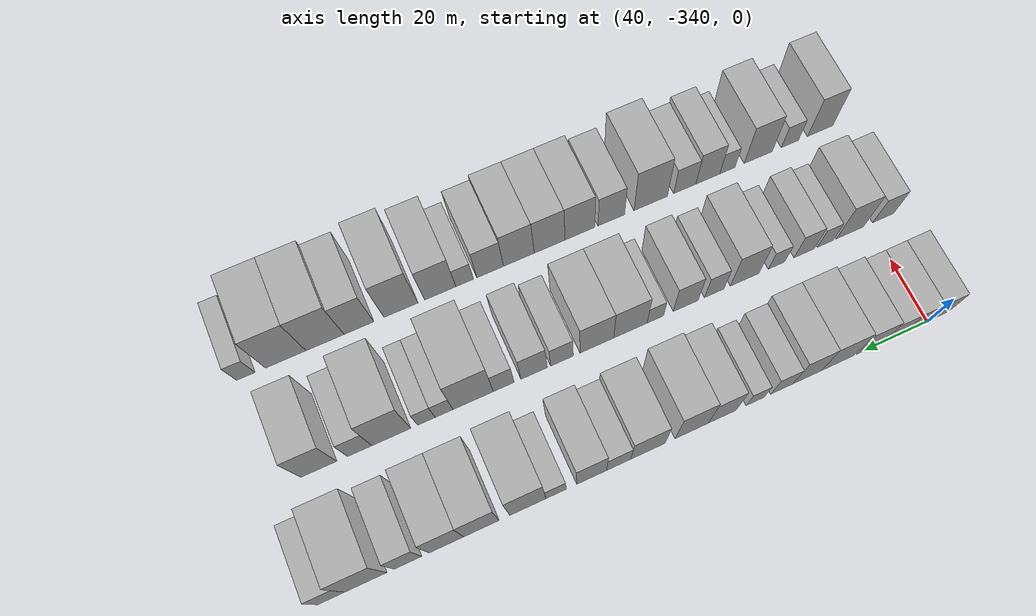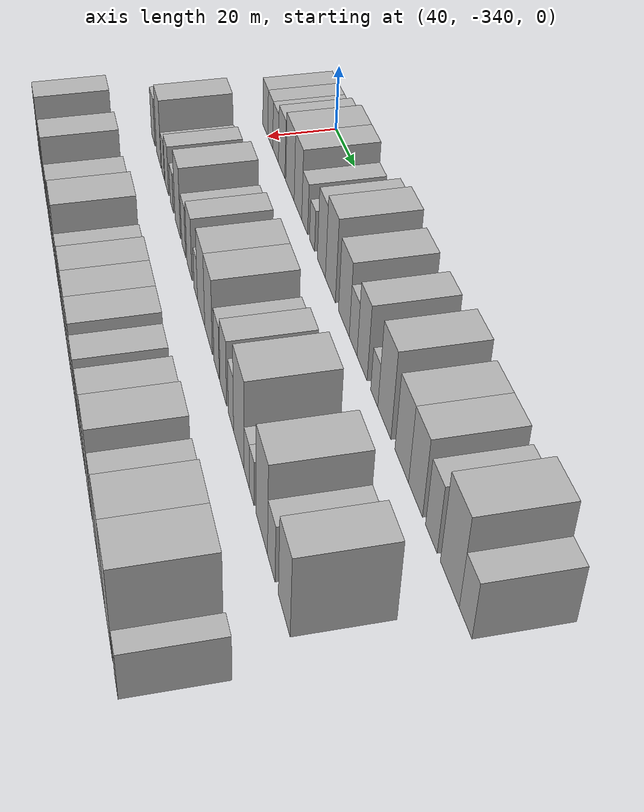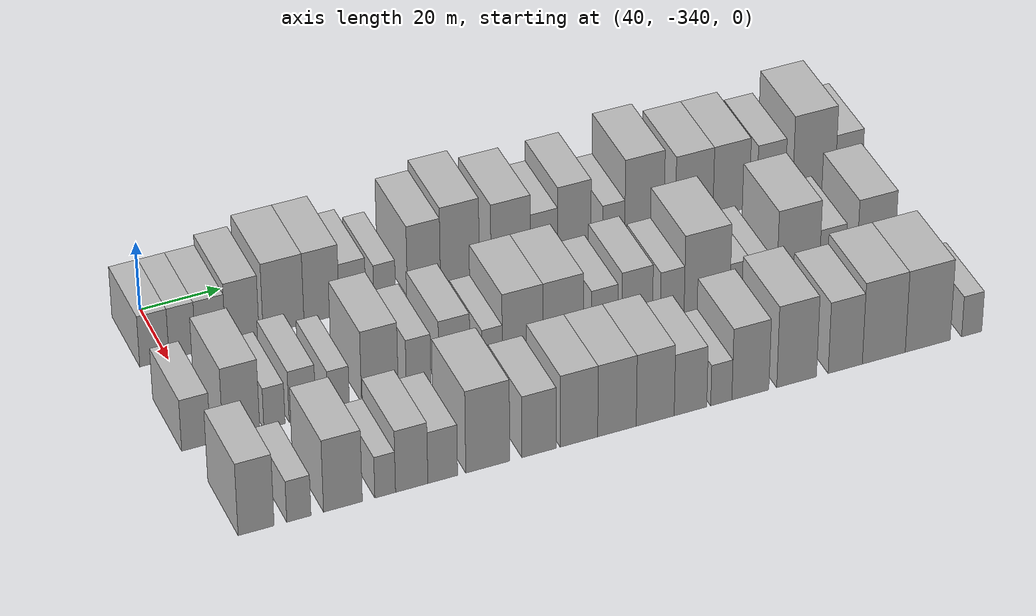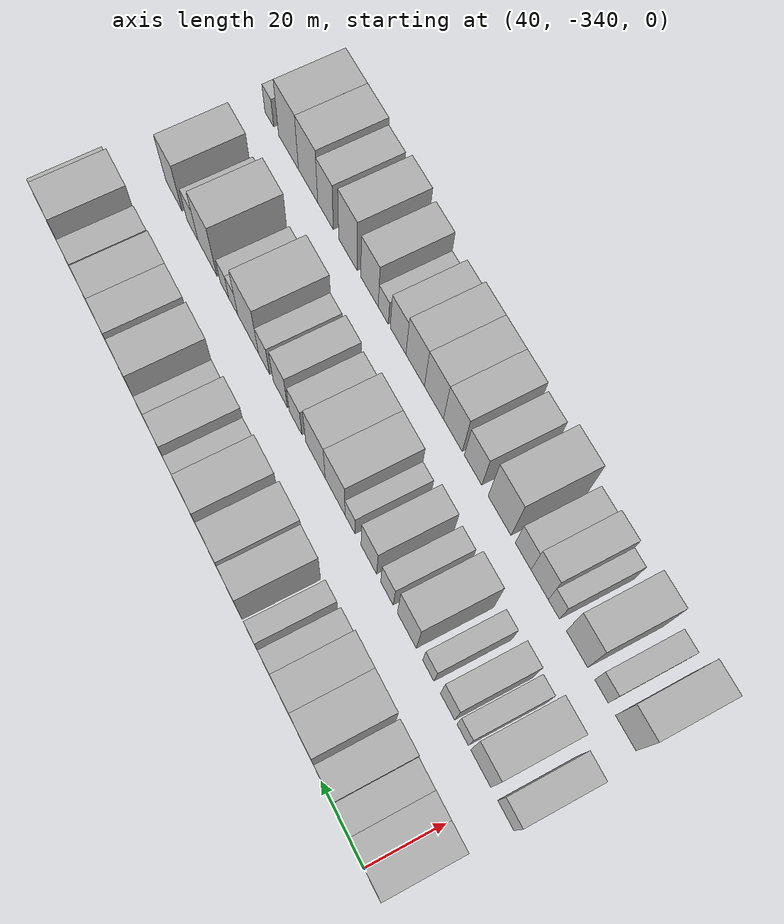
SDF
<sdf version="1.6">
 <world name="default">
  <model name="building_1">
   <static>1</static>
   <pose>50.0000 -343.4006 0 0.000000 0.000000 0.000000</pose>
   <link name="link">
    <pose>0 0 7.50 0 0 0</pose>
    <collision name="collision"><geometry><box><size>20.0000 7.1988 15.0000</size></box></geometry></collision>
    <visual name="visual">
     <cast_shadows>0</cast_shadows>
     <geometry><box><size>20.0000 7.1988 15.0000</size></box></geometry>
     <material>
      <script>
       <uri>model://HANNAS_wall/materials/scripts</uri>
       <uri>model://HANNAS_wall/materials/textures</uri>
       <name>vrc/HANNAS_wall</name>
      </script>
     </material>
    </visual>
   </link>
  </model>
  <model name="building_2">
   <static>1</static>
   <pose>50.0000 -336.5190 0 0.000000 0.000000 0.000000</pose>
   <link name="link">
    <pose>0 0 7.50 0 0 0</pose>
    <collision name="collision"><geometry><box><size>20.0000 6.5644 15.0000</size></box></geometry></collision>
    <visual name="visual">
     <cast_shadows>0</cast_shadows>
     <geometry><box><size>20.0000 6.5644 15.0000</size></box></geometry>
     <material>
      <script>
       <uri>model://HANNAS_wall/materials/scripts</uri>
       <uri>model://HANNAS_wall/materials/textures</uri>
       <name>vrc/HANNAS_wall</name>
      </script>
     </material>
    </visual>
   </link>
  </model>
  <model name="building_3">
   <static>1</static>
   <pose>50.0000 -329.5432 0 0.000000 0.000000 0.000000</pose>
   <link name="link">
    <pose>0 0 7.50 0 0 0</pose>
    <collision name="collision"><geometry><box><size>20.0000 7.3872 15.0000</size></box></geometry></collision>
    <visual name="visual">
     <cast_shadows>0</cast_shadows>
     <geometry><box><size>20.0000 7.3872 15.0000</size></box></geometry>
     <material>
      <script>
       <uri>model://HANNAS_wall/materials/scripts</uri>
       <uri>model://HANNAS_wall/materials/textures</uri>
       <name>vrc/HANNAS_wall</name>
      </script>
     </material>
    </visual>
   </link>
  </model>
  <model name="building_4">
   <static>1</static>
   <pose>50.0000 -321.6905 0 0.000000 0.000000 0.000000</pose>
   <link name="link">
    <pose>0 0 9.00 0 0 0</pose>
    <collision name="collision"><geometry><box><size>20.0000 8.3181 18.0000</size></box></geometry></collision>
    <visual name="visual">
     <cast_shadows>0</cast_shadows>
     <geometry><box><size>20.0000 8.3181 18.0000</size></box></geometry>
     <material>
      <script>
       <uri>model://HANNAS_wall/materials/scripts</uri>
       <uri>model://HANNAS_wall/materials/textures</uri>
       <name>vrc/HANNAS_wall</name>
      </script>
     </material>
    </visual>
   </link>
  </model>
  <model name="building_5">
   <static>1</static>
   <pose>50.0000 -311.4333 0 0.000000 0.000000 0.000000</pose>
   <link name="link">
    <pose>0 0 10.50 0 0 0</pose>
    <collision name="collision"><geometry><box><size>20.0000 10.1962 21.0000</size></box></geometry></collision>
    <visual name="visual">
     <cast_shadows>0</cast_shadows>
     <geometry><box><size>20.0000 10.1962 21.0000</size></box></geometry>
     <material>
      <script>
       <uri>model://HANNAS_wall/materials/scripts</uri>
       <uri>model://HANNAS_wall/materials/textures</uri>
       <name>vrc/HANNAS_wall</name>
      </script>
     </material>
    </visual>
   </link>
  </model>
  <model name="building_6">
   <static>1</static>
   <pose>50.0000 -301.9019 0 0.000000 0.000000 0.000000</pose>
   <link name="link">
    <pose>0 0 10.50 0 0 0</pose>
    <collision name="collision"><geometry><box><size>20.0000 8.8667 21.0000</size></box></geometry></collision>
    <visual name="visual">
     <cast_shadows>0</cast_shadows>
     <geometry><box><size>20.0000 8.8667 21.0000</size></box></geometry>
     <material>
      <script>
       <uri>model://HANNAS_wall/materials/scripts</uri>
       <uri>model://HANNAS_wall/materials/textures</uri>
       <name>vrc/HANNAS_wall</name>
      </script>
     </material>
    </visual>
   </link>
  </model>
  <model name="building_7">
   <static>1</static>
   <pose>50.0000 -294.1205 0 0.000000 0.000000 0.000000</pose>
   <link name="link">
    <pose>0 0 7.50 0 0 0</pose>
    <collision name="collision"><geometry><box><size>20.0000 6.6961 15.0000</size></box></geometry></collision>
    <visual name="visual">
     <cast_shadows>0</cast_shadows>
     <geometry><box><size>20.0000 6.6961 15.0000</size></box></geometry>
     <material>
      <script>
       <uri>model://HANNAS_wall/materials/scripts</uri>
       <uri>model://HANNAS_wall/materials/textures</uri>
       <name>vrc/HANNAS_wall</name>
      </script>
     </material>
    </visual>
   </link>
  </model>
  <model name="building_8">
   <static>1</static>
   <pose>50.0000 -286.0262 0 0.000000 0.000000 0.000000</pose>
   <link name="link">
    <pose>0 0 6.00 0 0 0</pose>
    <collision name="collision"><geometry><box><size>20.0000 5.4925 12.0000</size></box></geometry></collision>
    <visual name="visual">
     <cast_shadows>0</cast_shadows>
     <geometry><box><size>20.0000 5.4925 12.0000</size></box></geometry>
     <material>
      <script>
       <uri>model://HANNAS_wall/materials/scripts</uri>
       <uri>model://HANNAS_wall/materials/textures</uri>
       <name>vrc/HANNAS_wall</name>
      </script>
     </material>
    </visual>
   </link>
  </model>
  <model name="building_9">
   <static>1</static>
   <pose>50.0000 -276.0728 0 0.000000 0.000000 0.000000</pose>
   <link name="link">
    <pose>0 0 10.50 0 0 0</pose>
    <collision name="collision"><geometry><box><size>20.0000 8.4143 21.0000</size></box></geometry></collision>
    <visual name="visual">
     <cast_shadows>0</cast_shadows>
     <geometry><box><size>20.0000 8.4143 21.0000</size></box></geometry>
     <material>
      <script>
       <uri>model://HANNAS_wall/materials/scripts</uri>
       <uri>model://HANNAS_wall/materials/textures</uri>
       <name>vrc/HANNAS_wall</name>
      </script>
     </material>
    </visual>
   </link>
  </model>
  <model name="building_10">
   <static>1</static>
   <pose>50.0000 -266.9094 0 0.000000 0.000000 0.000000</pose>
   <link name="link">
    <pose>0 0 12.00 0 0 0</pose>
    <collision name="collision"><geometry><box><size>20.0000 9.9125 24.0000</size></box></geometry></collision>
    <visual name="visual">
     <cast_shadows>0</cast_shadows>
     <geometry><box><size>20.0000 9.9125 24.0000</size></box></geometry>
     <material>
      <script>
       <uri>model://HANNAS_wall/materials/scripts</uri>
       <uri>model://HANNAS_wall/materials/textures</uri>
       <name>vrc/HANNAS_wall</name>
      </script>
     </material>
    </visual>
   </link>
  </model>
  <model name="building_11">
   <static>1</static>
   <pose>50.0000 -253.9118 0 0.000000 0.000000 0.000000</pose>
   <link name="link">
    <pose>0 0 10.50 0 0 0</pose>
    <collision name="collision"><geometry><box><size>20.0000 10.0828 21.0000</size></box></geometry></collision>
    <visual name="visual">
     <cast_shadows>0</cast_shadows>
     <geometry><box><size>20.0000 10.0828 21.0000</size></box></geometry>
     <material>
      <script>
       <uri>model://HANNAS_wall/materials/scripts</uri>
       <uri>model://HANNAS_wall/materials/textures</uri>
       <name>vrc/HANNAS_wall</name>
      </script>
     </material>
    </visual>
   </link>
  </model>
  <model name="building_12">
   <static>1</static>
   <pose>50.0000 -245.3483 0 0.000000 0.000000 0.000000</pose>
   <link name="link">
    <pose>0 0 7.50 0 0 0</pose>
    <collision name="collision"><geometry><box><size>20.0000 7.0441 15.0000</size></box></geometry></collision>
    <visual name="visual">
     <cast_shadows>0</cast_shadows>
     <geometry><box><size>20.0000 7.0441 15.0000</size></box></geometry>
     <material>
      <script>
       <uri>model://HANNAS_wall/materials/scripts</uri>
       <uri>model://HANNAS_wall/materials/textures</uri>
       <name>vrc/HANNAS_wall</name>
      </script>
     </material>
    </visual>
   </link>
  </model>
  <model name="building_13">
   <static>1</static>
   <pose>50.0000 -237.5058 0 0.000000 0.000000 0.000000</pose>
   <link name="link">
    <pose>0 0 10.50 0 0 0</pose>
    <collision name="collision"><geometry><box><size>20.0000 8.6408 21.0000</size></box></geometry></collision>
    <visual name="visual">
     <cast_shadows>0</cast_shadows>
     <geometry><box><size>20.0000 8.6408 21.0000</size></box></geometry>
     <material>
      <script>
       <uri>model://HANNAS_wall/materials/scripts</uri>
       <uri>model://HANNAS_wall/materials/textures</uri>
       <name>vrc/HANNAS_wall</name>
      </script>
     </material>
    </visual>
   </link>
  </model>
  <model name="building_14">
   <static>1</static>
   <pose>50.0000 -227.2770 0 0.000000 0.000000 0.000000</pose>
   <link name="link">
    <pose>0 0 6.00 0 0 0</pose>
    <collision name="collision"><geometry><box><size>20.0000 5.8169 12.0000</size></box></geometry></collision>
    <visual name="visual">
     <cast_shadows>0</cast_shadows>
     <geometry><box><size>20.0000 5.8169 12.0000</size></box></geometry>
     <material>
      <script>
       <uri>model://HANNAS_wall/materials/scripts</uri>
       <uri>model://HANNAS_wall/materials/textures</uri>
       <name>vrc/HANNAS_wall</name>
      </script>
     </material>
    </visual>
   </link>
  </model>
  <model name="building_15">
   <static>1</static>
   <pose>50.0000 -219.2391 0 0.000000 0.000000 0.000000</pose>
   <link name="link">
    <pose>0 0 12.00 0 0 0</pose>
    <collision name="collision"><geometry><box><size>20.0000 10.2589 24.0000</size></box></geometry></collision>
    <visual name="visual">
     <cast_shadows>0</cast_shadows>
     <geometry><box><size>20.0000 10.2589 24.0000</size></box></geometry>
     <material>
      <script>
       <uri>model://HANNAS_wall/materials/scripts</uri>
       <uri>model://HANNAS_wall/materials/textures</uri>
       <name>vrc/HANNAS_wall</name>
      </script>
     </material>
    </visual>
   </link>
  </model>
  <model name="building_16">
   <static>1</static>
   <pose>50.0000 -206.1436 0 0.000000 0.000000 0.000000</pose>
   <link name="link">
    <pose>0 0 10.50 0 0 0</pose>
    <collision name="collision"><geometry><box><size>20.0000 9.9321 21.0000</size></box></geometry></collision>
    <visual name="visual">
     <cast_shadows>0</cast_shadows>
     <geometry><box><size>20.0000 9.9321 21.0000</size></box></geometry>
     <material>
      <script>
       <uri>model://HANNAS_wall/materials/scripts</uri>
       <uri>model://HANNAS_wall/materials/textures</uri>
       <name>vrc/HANNAS_wall</name>
      </script>
     </material>
    </visual>
   </link>
  </model>
  <model name="building_17">
   <static>1</static>
   <pose>50.0000 -196.3686 0 0.000000 0.000000 0.000000</pose>
   <link name="link">
    <pose>0 0 10.50 0 0 0</pose>
    <collision name="collision"><geometry><box><size>20.0000 9.6181 21.0000</size></box></geometry></collision>
    <visual name="visual">
     <cast_shadows>0</cast_shadows>
     <geometry><box><size>20.0000 9.6181 21.0000</size></box></geometry>
     <material>
      <script>
       <uri>model://HANNAS_wall/materials/scripts</uri>
       <uri>model://HANNAS_wall/materials/textures</uri>
       <name>vrc/HANNAS_wall</name>
      </script>
     </material>
    </visual>
   </link>
  </model>
  <model name="building_18">
   <static>1</static>
   <pose>50.0000 -185.7863 0 0.000000 0.000000 0.000000</pose>
   <link name="link">
    <pose>0 0 9.00 0 0 0</pose>
    <collision name="collision"><geometry><box><size>20.0000 7.5465 18.0000</size></box></geometry></collision>
    <visual name="visual">
     <cast_shadows>0</cast_shadows>
     <geometry><box><size>20.0000 7.5465 18.0000</size></box></geometry>
     <material>
      <script>
       <uri>model://HANNAS_wall/materials/scripts</uri>
       <uri>model://HANNAS_wall/materials/textures</uri>
       <name>vrc/HANNAS_wall</name>
      </script>
     </material>
    </visual>
   </link>
  </model>
  <model name="building_19">
   <static>1</static>
   <pose>50.0000 -174.3009 0 0.000000 0.000000 0.000000</pose>
   <link name="link">
    <pose>0 0 12.00 0 0 0</pose>
    <collision name="collision"><geometry><box><size>20.0000 11.4243 24.0000</size></box></geometry></collision>
    <visual name="visual">
     <cast_shadows>0</cast_shadows>
     <geometry><box><size>20.0000 11.4243 24.0000</size></box></geometry>
     <material>
      <script>
       <uri>model://HANNAS_wall/materials/scripts</uri>
       <uri>model://HANNAS_wall/materials/textures</uri>
       <name>vrc/HANNAS_wall</name>
      </script>
     </material>
    </visual>
   </link>
  </model>
  <model name="building_20">
   <static>1</static>
   <pose>50.0000 -164.9584 0 0.000000 0.000000 0.000000</pose>
   <link name="link">
    <pose>0 0 7.50 0 0 0</pose>
    <collision name="collision"><geometry><box><size>20.0000 7.2607 15.0000</size></box></geometry></collision>
    <visual name="visual">
     <cast_shadows>0</cast_shadows>
     <geometry><box><size>20.0000 7.2607 15.0000</size></box></geometry>
     <material>
      <script>
       <uri>model://HANNAS_wall/materials/scripts</uri>
       <uri>model://HANNAS_wall/materials/textures</uri>
       <name>vrc/HANNAS_wall</name>
      </script>
     </material>
    </visual>
   </link>
  </model>
  <model name="building_77">
   <static>1</static>
   <pose>82.0000 -344.5168 0 0.000000 0.000000 0.000000</pose>
   <link name="link">
    <pose>0 0 7.50 0 0 0</pose>
    <collision name="collision"><geometry><box><size>20.0000 6.9664 15.0000</size></box></geometry></collision>
    <visual name="visual">
     <cast_shadows>0</cast_shadows>
     <geometry><box><size>20.0000 6.9664 15.0000</size></box></geometry>
     <material>
      <script>
       <uri>model://HANNAS_wall/materials/scripts</uri>
       <uri>model://HANNAS_wall/materials/textures</uri>
       <name>vrc/HANNAS_wall</name>
      </script>
     </material>
    </visual>
   </link>
  </model>
  <model name="building_78">
   <static>1</static>
   <pose>82.0000 -333.5764 0 0.000000 0.000000 0.000000</pose>
   <link name="link">
    <pose>0 0 10.50 0 0 0</pose>
    <collision name="collision"><geometry><box><size>20.0000 8.9143 21.0000</size></box></geometry></collision>
    <visual name="visual">
     <cast_shadows>0</cast_shadows>
     <geometry><box><size>20.0000 8.9143 21.0000</size></box></geometry>
     <material>
      <script>
       <uri>model://HANNAS_wall/materials/scripts</uri>
       <uri>model://HANNAS_wall/materials/textures</uri>
       <name>vrc/HANNAS_wall</name>
      </script>
     </material>
    </visual>
   </link>
  </model>
  <model name="building_79">
   <static>1</static>
   <pose>82.0000 -325.5421 0 0.000000 0.000000 0.000000</pose>
   <link name="link">
    <pose>0 0 6.00 0 0 0</pose>
    <collision name="collision"><geometry><box><size>20.0000 5.1543 12.0000</size></box></geometry></collision>
    <visual name="visual">
     <cast_shadows>0</cast_shadows>
     <geometry><box><size>20.0000 5.1543 12.0000</size></box></geometry>
     <material>
      <script>
       <uri>model://HANNAS_wall/materials/scripts</uri>
       <uri>model://HANNAS_wall/materials/textures</uri>
       <name>vrc/HANNAS_wall</name>
      </script>
     </material>
    </visual>
   </link>
  </model>
  <model name="building_80">
   <static>1</static>
   <pose>82.0000 -318.7076 0 0.000000 0.000000 0.000000</pose>
   <link name="link">
    <pose>0 0 7.50 0 0 0</pose>
    <collision name="collision"><geometry><box><size>20.0000 6.5147 15.0000</size></box></geometry></collision>
    <visual name="visual">
     <cast_shadows>0</cast_shadows>
     <geometry><box><size>20.0000 6.5147 15.0000</size></box></geometry>
     <material>
      <script>
       <uri>model://HANNAS_wall/materials/scripts</uri>
       <uri>model://HANNAS_wall/materials/textures</uri>
       <name>vrc/HANNAS_wall</name>
      </script>
     </material>
    </visual>
   </link>
  </model>
  <model name="building_81">
   <static>1</static>
   <pose>82.0000 -309.8279 0 0.000000 0.000000 0.000000</pose>
   <link name="link">
    <pose>0 0 6.00 0 0 0</pose>
    <collision name="collision"><geometry><box><size>20.0000 5.2447 12.0000</size></box></geometry></collision>
    <visual name="visual">
     <cast_shadows>0</cast_shadows>
     <geometry><box><size>20.0000 5.2447 12.0000</size></box></geometry>
     <material>
      <script>
       <uri>model://HANNAS_wall/materials/scripts</uri>
       <uri>model://HANNAS_wall/materials/textures</uri>
       <name>vrc/HANNAS_wall</name>
      </script>
     </material>
    </visual>
   </link>
  </model>
  <model name="building_82">
   <static>1</static>
   <pose>82.0000 -299.6785 0 0.000000 0.000000 0.000000</pose>
   <link name="link">
    <pose>0 0 10.50 0 0 0</pose>
    <collision name="collision"><geometry><box><size>20.0000 9.0541 21.0000</size></box></geometry></collision>
    <visual name="visual">
     <cast_shadows>0</cast_shadows>
     <geometry><box><size>20.0000 9.0541 21.0000</size></box></geometry>
     <material>
      <script>
       <uri>model://HANNAS_wall/materials/scripts</uri>
       <uri>model://HANNAS_wall/materials/textures</uri>
       <name>vrc/HANNAS_wall</name>
      </script>
     </material>
    </visual>
   </link>
  </model>
  <model name="building_83">
   <static>1</static>
   <pose>82.0000 -290.0996 0 0.000000 0.000000 0.000000</pose>
   <link name="link">
    <pose>0 0 7.50 0 0 0</pose>
    <collision name="collision"><geometry><box><size>20.0000 6.1035 15.0000</size></box></geometry></collision>
    <visual name="visual">
     <cast_shadows>0</cast_shadows>
     <geometry><box><size>20.0000 6.1035 15.0000</size></box></geometry>
     <material>
      <script>
       <uri>model://HANNAS_wall/materials/scripts</uri>
       <uri>model://HANNAS_wall/materials/textures</uri>
       <name>vrc/HANNAS_wall</name>
      </script>
     </material>
    </visual>
   </link>
  </model>
  <model name="building_84">
   <static>1</static>
   <pose>82.0000 -281.1838 0 0.000000 0.000000 0.000000</pose>
   <link name="link">
    <pose>0 0 9.00 0 0 0</pose>
    <collision name="collision"><geometry><box><size>20.0000 7.7281 18.0000</size></box></geometry></collision>
    <visual name="visual">
     <cast_shadows>0</cast_shadows>
     <geometry><box><size>20.0000 7.7281 18.0000</size></box></geometry>
     <material>
      <script>
       <uri>model://HANNAS_wall/materials/scripts</uri>
       <uri>model://HANNAS_wall/materials/textures</uri>
       <name>vrc/HANNAS_wall</name>
      </script>
     </material>
    </visual>
   </link>
  </model>
  <model name="building_85">
   <static>1</static>
   <pose>82.0000 -271.7753 0 0.000000 0.000000 0.000000</pose>
   <link name="link">
    <pose>0 0 6.00 0 0 0</pose>
    <collision name="collision"><geometry><box><size>20.0000 5.0889 12.0000</size></box></geometry></collision>
    <visual name="visual">
     <cast_shadows>0</cast_shadows>
     <geometry><box><size>20.0000 5.0889 12.0000</size></box></geometry>
     <material>
      <script>
       <uri>model://HANNAS_wall/materials/scripts</uri>
       <uri>model://HANNAS_wall/materials/textures</uri>
       <name>vrc/HANNAS_wall</name>
      </script>
     </material>
    </visual>
   </link>
  </model>
  <model name="building_86">
   <static>1</static>
   <pose>82.0000 -264.1282 0 0.000000 0.000000 0.000000</pose>
   <link name="link">
    <pose>0 0 10.50 0 0 0</pose>
    <collision name="collision"><geometry><box><size>20.0000 10.2053 21.0000</size></box></geometry></collision>
    <visual name="visual">
     <cast_shadows>0</cast_shadows>
     <geometry><box><size>20.0000 10.2053 21.0000</size></box></geometry>
     <material>
      <script>
       <uri>model://HANNAS_wall/materials/scripts</uri>
       <uri>model://HANNAS_wall/materials/textures</uri>
       <name>vrc/HANNAS_wall</name>
      </script>
     </material>
    </visual>
   </link>
  </model>
  <model name="building_87">
   <static>1</static>
   <pose>82.0000 -253.9240 0 0.000000 0.000000 0.000000</pose>
   <link name="link">
    <pose>0 0 10.50 0 0 0</pose>
    <collision name="collision"><geometry><box><size>20.0000 10.2030 21.0000</size></box></geometry></collision>
    <visual name="visual">
     <cast_shadows>0</cast_shadows>
     <geometry><box><size>20.0000 10.2030 21.0000</size></box></geometry>
     <material>
      <script>
       <uri>model://HANNAS_wall/materials/scripts</uri>
       <uri>model://HANNAS_wall/materials/textures</uri>
       <name>vrc/HANNAS_wall</name>
      </script>
     </material>
    </visual>
   </link>
  </model>
  <model name="building_88">
   <static>1</static>
   <pose>82.0000 -243.4356 0 0.000000 0.000000 0.000000</pose>
   <link name="link">
    <pose>0 0 7.50 0 0 0</pose>
    <collision name="collision"><geometry><box><size>20.0000 6.7737 15.0000</size></box></geometry></collision>
    <visual name="visual">
     <cast_shadows>0</cast_shadows>
     <geometry><box><size>20.0000 6.7737 15.0000</size></box></geometry>
     <material>
      <script>
       <uri>model://HANNAS_wall/materials/scripts</uri>
       <uri>model://HANNAS_wall/materials/textures</uri>
       <name>vrc/HANNAS_wall</name>
      </script>
     </material>
    </visual>
   </link>
  </model>
  <model name="building_89">
   <static>1</static>
   <pose>82.0000 -235.1332 0 0.000000 0.000000 0.000000</pose>
   <link name="link">
    <pose>0 0 9.00 0 0 0</pose>
    <collision name="collision"><geometry><box><size>20.0000 7.8310 18.0000</size></box></geometry></collision>
    <visual name="visual">
     <cast_shadows>0</cast_shadows>
     <geometry><box><size>20.0000 7.8310 18.0000</size></box></geometry>
     <material>
      <script>
       <uri>model://HANNAS_wall/materials/scripts</uri>
       <uri>model://HANNAS_wall/materials/textures</uri>
       <name>vrc/HANNAS_wall</name>
      </script>
     </material>
    </visual>
   </link>
  </model>
  <model name="building_90">
   <static>1</static>
   <pose>82.0000 -226.1555 0 0.000000 0.000000 0.000000</pose>
   <link name="link">
    <pose>0 0 7.50 0 0 0</pose>
    <collision name="collision"><geometry><box><size>20.0000 6.1243 15.0000</size></box></geometry></collision>
    <visual name="visual">
     <cast_shadows>0</cast_shadows>
     <geometry><box><size>20.0000 6.1243 15.0000</size></box></geometry>
     <material>
      <script>
       <uri>model://HANNAS_wall/materials/scripts</uri>
       <uri>model://HANNAS_wall/materials/textures</uri>
       <name>vrc/HANNAS_wall</name>
      </script>
     </material>
    </visual>
   </link>
  </model>
  <model name="building_91">
   <static>1</static>
   <pose>82.0000 -217.1970 0 0.000000 0.000000 0.000000</pose>
   <link name="link">
    <pose>0 0 12.00 0 0 0</pose>
    <collision name="collision"><geometry><box><size>20.0000 11.7927 24.0000</size></box></geometry></collision>
    <visual name="visual">
     <cast_shadows>0</cast_shadows>
     <geometry><box><size>20.0000 11.7927 24.0000</size></box></geometry>
     <material>
      <script>
       <uri>model://HANNAS_wall/materials/scripts</uri>
       <uri>model://HANNAS_wall/materials/textures</uri>
       <name>vrc/HANNAS_wall</name>
      </script>
     </material>
    </visual>
   </link>
  </model>
  <model name="building_92">
   <static>1</static>
   <pose>82.0000 -208.7288 0 0.000000 0.000000 0.000000</pose>
   <link name="link">
    <pose>0 0 6.00 0 0 0</pose>
    <collision name="collision"><geometry><box><size>20.0000 5.1437 12.0000</size></box></geometry></collision>
    <visual name="visual">
     <cast_shadows>0</cast_shadows>
     <geometry><box><size>20.0000 5.1437 12.0000</size></box></geometry>
     <material>
      <script>
       <uri>model://HANNAS_wall/materials/scripts</uri>
       <uri>model://HANNAS_wall/materials/textures</uri>
       <name>vrc/HANNAS_wall</name>
      </script>
     </material>
    </visual>
   </link>
  </model>
  <model name="building_93">
   <static>1</static>
   <pose>82.0000 -203.6591 0 0.000000 0.000000 0.000000</pose>
   <link name="link">
    <pose>0 0 6.00 0 0 0</pose>
    <collision name="collision"><geometry><box><size>20.0000 4.9956 12.0000</size></box></geometry></collision>
    <visual name="visual">
     <cast_shadows>0</cast_shadows>
     <geometry><box><size>20.0000 4.9956 12.0000</size></box></geometry>
     <material>
      <script>
       <uri>model://HANNAS_wall/materials/scripts</uri>
       <uri>model://HANNAS_wall/materials/textures</uri>
       <name>vrc/HANNAS_wall</name>
      </script>
     </material>
    </visual>
   </link>
  </model>
  <model name="building_94">
   <static>1</static>
   <pose>82.0000 -193.6045 0 0.000000 0.000000 0.000000</pose>
   <link name="link">
    <pose>0 0 12.00 0 0 0</pose>
    <collision name="collision"><geometry><box><size>20.0000 11.1137 24.0000</size></box></geometry></collision>
    <visual name="visual">
     <cast_shadows>0</cast_shadows>
     <geometry><box><size>20.0000 11.1137 24.0000</size></box></geometry>
     <material>
      <script>
       <uri>model://HANNAS_wall/materials/scripts</uri>
       <uri>model://HANNAS_wall/materials/textures</uri>
       <name>vrc/HANNAS_wall</name>
      </script>
     </material>
    </visual>
   </link>
  </model>
  <model name="building_95">
   <static>1</static>
   <pose>82.0000 -184.6211 0 0.000000 0.000000 0.000000</pose>
   <link name="link">
    <pose>0 0 7.50 0 0 0</pose>
    <collision name="collision"><geometry><box><size>20.0000 6.8530 15.0000</size></box></geometry></collision>
    <visual name="visual">
     <cast_shadows>0</cast_shadows>
     <geometry><box><size>20.0000 6.8530 15.0000</size></box></geometry>
     <material>
      <script>
       <uri>model://HANNAS_wall/materials/scripts</uri>
       <uri>model://HANNAS_wall/materials/textures</uri>
       <name>vrc/HANNAS_wall</name>
      </script>
     </material>
    </visual>
   </link>
  </model>
  <model name="building_96">
   <static>1</static>
   <pose>82.0000 -173.1901 0 0.000000 0.000000 0.000000</pose>
   <link name="link">
    <pose>0 0 10.50 0 0 0</pose>
    <collision name="collision"><geometry><box><size>20.0000 10.0090 21.0000</size></box></geometry></collision>
    <visual name="visual">
     <cast_shadows>0</cast_shadows>
     <geometry><box><size>20.0000 10.0090 21.0000</size></box></geometry>
     <material>
      <script>
       <uri>model://HANNAS_wall/materials/scripts</uri>
       <uri>model://HANNAS_wall/materials/textures</uri>
       <name>vrc/HANNAS_wall</name>
      </script>
     </material>
    </visual>
   </link>
  </model>
  <model name="building_159">
   <static>1</static>
   <pose>114.0000 -341.7289 0 0.000000 0.000000 0.000000</pose>
   <link name="link">
    <pose>0 0 10.50 0 0 0</pose>
    <collision name="collision"><geometry><box><size>20.0000 8.5421 21.0000</size></box></geometry></collision>
    <visual name="visual">
     <cast_shadows>0</cast_shadows>
     <geometry><box><size>20.0000 8.5421 21.0000</size></box></geometry>
     <material>
      <script>
       <uri>model://HANNAS_wall/materials/scripts</uri>
       <uri>model://HANNAS_wall/materials/textures</uri>
       <name>vrc/HANNAS_wall</name>
      </script>
     </material>
    </visual>
   </link>
  </model>
  <model name="building_160">
   <static>1</static>
   <pose>114.0000 -331.5695 0 0.000000 0.000000 0.000000</pose>
   <link name="link">
    <pose>0 0 6.00 0 0 0</pose>
    <collision name="collision"><geometry><box><size>20.0000 5.7767 12.0000</size></box></geometry></collision>
    <visual name="visual">
     <cast_shadows>0</cast_shadows>
     <geometry><box><size>20.0000 5.7767 12.0000</size></box></geometry>
     <material>
      <script>
       <uri>model://HANNAS_wall/materials/scripts</uri>
       <uri>model://HANNAS_wall/materials/textures</uri>
       <name>vrc/HANNAS_wall</name>
      </script>
     </material>
    </visual>
   </link>
  </model>
  <model name="building_161">
   <static>1</static>
   <pose>114.0000 -321.0269 0 0.000000 0.000000 0.000000</pose>
   <link name="link">
    <pose>0 0 10.50 0 0 0</pose>
    <collision name="collision"><geometry><box><size>20.0000 9.3087 21.0000</size></box></geometry></collision>
    <visual name="visual">
     <cast_shadows>0</cast_shadows>
     <geometry><box><size>20.0000 9.3087 21.0000</size></box></geometry>
     <material>
      <script>
       <uri>model://HANNAS_wall/materials/scripts</uri>
       <uri>model://HANNAS_wall/materials/textures</uri>
       <name>vrc/HANNAS_wall</name>
      </script>
     </material>
    </visual>
   </link>
  </model>
  <model name="building_162">
   <static>1</static>
   <pose>114.0000 -310.8792 0 0.000000 0.000000 0.000000</pose>
   <link name="link">
    <pose>0 0 6.00 0 0 0</pose>
    <collision name="collision"><geometry><box><size>20.0000 4.9866 12.0000</size></box></geometry></collision>
    <visual name="visual">
     <cast_shadows>0</cast_shadows>
     <geometry><box><size>20.0000 4.9866 12.0000</size></box></geometry>
     <material>
      <script>
       <uri>model://HANNAS_wall/materials/scripts</uri>
       <uri>model://HANNAS_wall/materials/textures</uri>
       <name>vrc/HANNAS_wall</name>
      </script>
     </material>
    </visual>
   </link>
  </model>
  <model name="building_163">
   <static>1</static>
   <pose>114.0000 -304.4733 0 0.000000 0.000000 0.000000</pose>
   <link name="link">
    <pose>0 0 9.00 0 0 0</pose>
    <collision name="collision"><geometry><box><size>20.0000 7.8251 18.0000</size></box></geometry></collision>
    <visual name="visual">
     <cast_shadows>0</cast_shadows>
     <geometry><box><size>20.0000 7.8251 18.0000</size></box></geometry>
     <material>
      <script>
       <uri>model://HANNAS_wall/materials/scripts</uri>
       <uri>model://HANNAS_wall/materials/textures</uri>
       <name>vrc/HANNAS_wall</name>
      </script>
     </material>
    </visual>
   </link>
  </model>
  <model name="building_164">
   <static>1</static>
   <pose>114.0000 -296.9573 0 0.000000 0.000000 0.000000</pose>
   <link name="link">
    <pose>0 0 7.50 0 0 0</pose>
    <collision name="collision"><geometry><box><size>20.0000 7.2070 15.0000</size></box></geometry></collision>
    <visual name="visual">
     <cast_shadows>0</cast_shadows>
     <geometry><box><size>20.0000 7.2070 15.0000</size></box></geometry>
     <material>
      <script>
       <uri>model://HANNAS_wall/materials/scripts</uri>
       <uri>model://HANNAS_wall/materials/textures</uri>
       <name>vrc/HANNAS_wall</name>
      </script>
     </material>
    </visual>
   </link>
  </model>
  <model name="building_165">
   <static>1</static>
   <pose>114.0000 -285.9857 0 0.000000 0.000000 0.000000</pose>
   <link name="link">
    <pose>0 0 12.00 0 0 0</pose>
    <collision name="collision"><geometry><box><size>20.0000 10.7362 24.0000</size></box></geometry></collision>
    <visual name="visual">
     <cast_shadows>0</cast_shadows>
     <geometry><box><size>20.0000 10.7362 24.0000</size></box></geometry>
     <material>
      <script>
       <uri>model://HANNAS_wall/materials/scripts</uri>
       <uri>model://HANNAS_wall/materials/textures</uri>
       <name>vrc/HANNAS_wall</name>
      </script>
     </material>
    </visual>
   </link>
  </model>
  <model name="building_166">
   <static>1</static>
   <pose>114.0000 -273.4076 0 0.000000 0.000000 0.000000</pose>
   <link name="link">
    <pose>0 0 9.00 0 0 0</pose>
    <collision name="collision"><geometry><box><size>20.0000 8.4199 18.0000</size></box></geometry></collision>
    <visual name="visual">
     <cast_shadows>0</cast_shadows>
     <geometry><box><size>20.0000 8.4199 18.0000</size></box></geometry>
     <material>
      <script>
       <uri>model://HANNAS_wall/materials/scripts</uri>
       <uri>model://HANNAS_wall/materials/textures</uri>
       <name>vrc/HANNAS_wall</name>
      </script>
     </material>
    </visual>
   </link>
  </model>
  <model name="building_167">
   <static>1</static>
   <pose>114.0000 -263.5535 0 0.000000 0.000000 0.000000</pose>
   <link name="link">
    <pose>0 0 10.50 0 0 0</pose>
    <collision name="collision"><geometry><box><size>20.0000 9.2883 21.0000</size></box></geometry></collision>
    <visual name="visual">
     <cast_shadows>0</cast_shadows>
     <geometry><box><size>20.0000 9.2883 21.0000</size></box></geometry>
     <material>
      <script>
       <uri>model://HANNAS_wall/materials/scripts</uri>
       <uri>model://HANNAS_wall/materials/textures</uri>
       <name>vrc/HANNAS_wall</name>
      </script>
     </material>
    </visual>
   </link>
  </model>
  <model name="building_168">
   <static>1</static>
   <pose>114.0000 -254.1169 0 0.000000 0.000000 0.000000</pose>
   <link name="link">
    <pose>0 0 10.50 0 0 0</pose>
    <collision name="collision"><geometry><box><size>20.0000 9.5848 21.0000</size></box></geometry></collision>
    <visual name="visual">
     <cast_shadows>0</cast_shadows>
     <geometry><box><size>20.0000 9.5848 21.0000</size></box></geometry>
     <material>
      <script>
       <uri>model://HANNAS_wall/materials/scripts</uri>
       <uri>model://HANNAS_wall/materials/textures</uri>
       <name>vrc/HANNAS_wall</name>
      </script>
     </material>
    </visual>
   </link>
  </model>
  <model name="building_169">
   <static>1</static>
   <pose>114.0000 -244.5821 0 0.000000 0.000000 0.000000</pose>
   <link name="link">
    <pose>0 0 10.50 0 0 0</pose>
    <collision name="collision"><geometry><box><size>20.0000 9.4849 21.0000</size></box></geometry></collision>
    <visual name="visual">
     <cast_shadows>0</cast_shadows>
     <geometry><box><size>20.0000 9.4849 21.0000</size></box></geometry>
     <material>
      <script>
       <uri>model://HANNAS_wall/materials/scripts</uri>
       <uri>model://HANNAS_wall/materials/textures</uri>
       <name>vrc/HANNAS_wall</name>
      </script>
     </material>
    </visual>
   </link>
  </model>
  <model name="building_170">
   <static>1</static>
   <pose>114.0000 -235.7529 0 0.000000 0.000000 0.000000</pose>
   <link name="link">
    <pose>0 0 9.00 0 0 0</pose>
    <collision name="collision"><geometry><box><size>20.0000 8.1736 18.0000</size></box></geometry></collision>
    <visual name="visual">
     <cast_shadows>0</cast_shadows>
     <geometry><box><size>20.0000 8.1736 18.0000</size></box></geometry>
     <material>
      <script>
       <uri>model://HANNAS_wall/materials/scripts</uri>
       <uri>model://HANNAS_wall/materials/textures</uri>
       <name>vrc/HANNAS_wall</name>
      </script>
     </material>
    </visual>
   </link>
  </model>
  <model name="building_171">
   <static>1</static>
   <pose>114.0000 -227.9977 0 0.000000 0.000000 0.000000</pose>
   <link name="link">
    <pose>0 0 6.00 0 0 0</pose>
    <collision name="collision"><geometry><box><size>20.0000 5.3368 12.0000</size></box></geometry></collision>
    <visual name="visual">
     <cast_shadows>0</cast_shadows>
     <geometry><box><size>20.0000 5.3368 12.0000</size></box></geometry>
     <material>
      <script>
       <uri>model://HANNAS_wall/materials/scripts</uri>
       <uri>model://HANNAS_wall/materials/textures</uri>
       <name>vrc/HANNAS_wall</name>
      </script>
     </material>
    </visual>
   </link>
  </model>
  <model name="building_172">
   <static>1</static>
   <pose>114.0000 -220.6401 0 0.000000 0.000000 0.000000</pose>
   <link name="link">
    <pose>0 0 10.50 0 0 0</pose>
    <collision name="collision"><geometry><box><size>20.0000 9.3783 21.0000</size></box></geometry></collision>
    <visual name="visual">
     <cast_shadows>0</cast_shadows>
     <geometry><box><size>20.0000 9.3783 21.0000</size></box></geometry>
     <material>
      <script>
       <uri>model://HANNAS_wall/materials/scripts</uri>
       <uri>model://HANNAS_wall/materials/textures</uri>
       <name>vrc/HANNAS_wall</name>
      </script>
     </material>
    </visual>
   </link>
  </model>
  <model name="building_173">
   <static>1</static>
   <pose>114.0000 -208.8828 0 0.000000 0.000000 0.000000</pose>
   <link name="link">
    <pose>0 0 12.00 0 0 0</pose>
    <collision name="collision"><geometry><box><size>20.0000 10.1363 24.0000</size></box></geometry></collision>
    <visual name="visual">
     <cast_shadows>0</cast_shadows>
     <geometry><box><size>20.0000 10.1363 24.0000</size></box></geometry>
     <material>
      <script>
       <uri>model://HANNAS_wall/materials/scripts</uri>
       <uri>model://HANNAS_wall/materials/textures</uri>
       <name>vrc/HANNAS_wall</name>
      </script>
     </material>
    </visual>
   </link>
  </model>
  <model name="building_174">
   <static>1</static>
   <pose>114.0000 -196.4392 0 0.000000 0.000000 0.000000</pose>
   <link name="link">
    <pose>0 0 10.50 0 0 0</pose>
    <collision name="collision"><geometry><box><size>20.0000 8.7510 21.0000</size></box></geometry></collision>
    <visual name="visual">
     <cast_shadows>0</cast_shadows>
     <geometry><box><size>20.0000 8.7510 21.0000</size></box></geometry>
     <material>
      <script>
       <uri>model://HANNAS_wall/materials/scripts</uri>
       <uri>model://HANNAS_wall/materials/textures</uri>
       <name>vrc/HANNAS_wall</name>
      </script>
     </material>
    </visual>
   </link>
  </model>
  <model name="building_175">
   <static>1</static>
   <pose>114.0000 -186.5176 0 0.000000 0.000000 0.000000</pose>
   <link name="link">
    <pose>0 0 12.00 0 0 0</pose>
    <collision name="collision"><geometry><box><size>20.0000 11.0921 24.0000</size></box></geometry></collision>
    <visual name="visual">
     <cast_shadows>0</cast_shadows>
     <geometry><box><size>20.0000 11.0921 24.0000</size></box></geometry>
     <material>
      <script>
       <uri>model://HANNAS_wall/materials/scripts</uri>
       <uri>model://HANNAS_wall/materials/textures</uri>
       <name>vrc/HANNAS_wall</name>
      </script>
     </material>
    </visual>
   </link>
  </model>
  <model name="building_176">
   <static>1</static>
   <pose>114.0000 -175.1453 0 0.000000 0.000000 0.000000</pose>
   <link name="link">
    <pose>0 0 12.00 0 0 0</pose>
    <collision name="collision"><geometry><box><size>20.0000 11.6524 24.0000</size></box></geometry></collision>
    <visual name="visual">
     <cast_shadows>0</cast_shadows>
     <geometry><box><size>20.0000 11.6524 24.0000</size></box></geometry>
     <material>
      <script>
       <uri>model://HANNAS_wall/materials/scripts</uri>
       <uri>model://HANNAS_wall/materials/textures</uri>
       <name>vrc/HANNAS_wall</name>
      </script>
     </material>
    </visual>
   </link>
  </model>
  <model name="building_177">
   <static>1</static>
   <pose>114.0000 -163.6974 0 0.000000 0.000000 0.000000</pose>
   <link name="link">
    <pose>0 0 6.00 0 0 0</pose>
    <collision name="collision"><geometry><box><size>20.0000 5.2435 12.0000</size></box></geometry></collision>
    <visual name="visual">
     <cast_shadows>0</cast_shadows>
     <geometry><box><size>20.0000 5.2435 12.0000</size></box></geometry>
     <material>
      <script>
       <uri>model://HANNAS_wall/materials/scripts</uri>
       <uri>model://HANNAS_wall/materials/textures</uri>
       <name>vrc/HANNAS_wall</name>
      </script>
     </material>
    </visual>
   </link>
  </model>
 </world>
</sdf>
